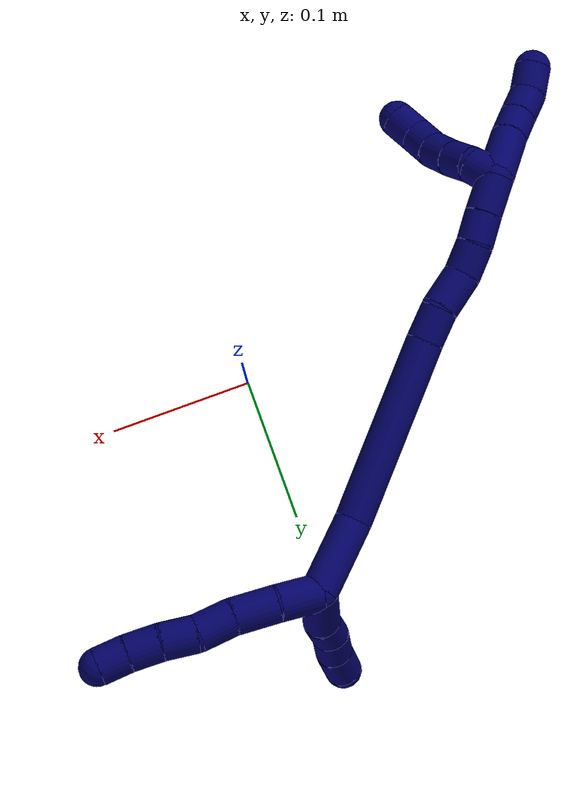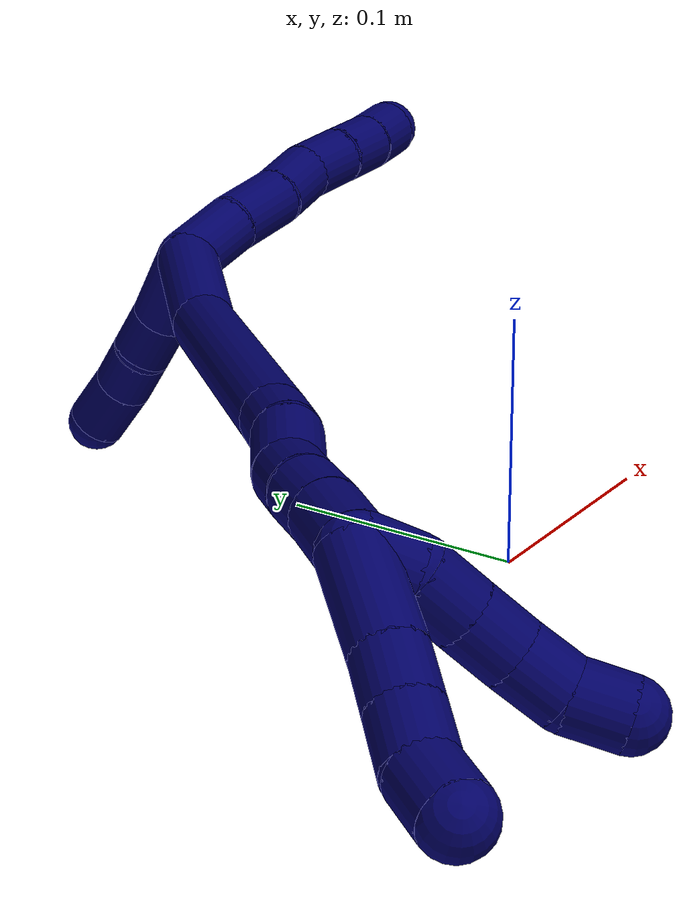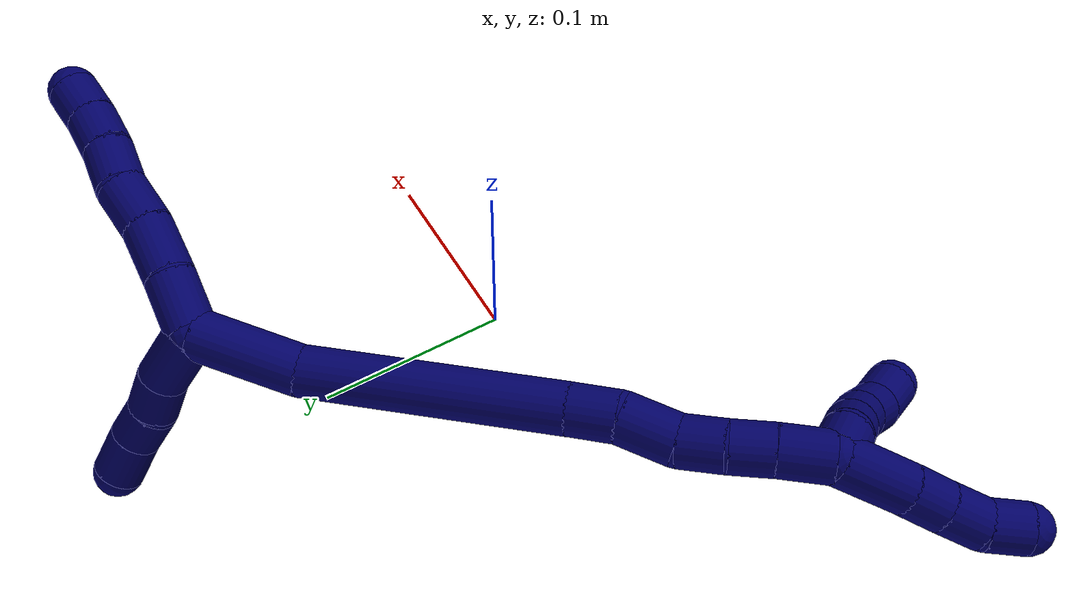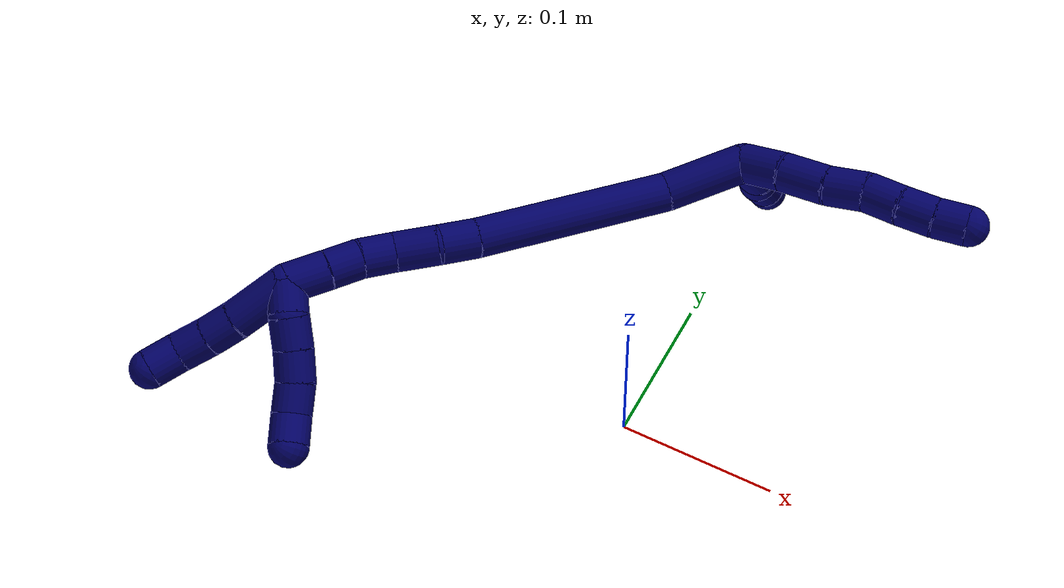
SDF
<sdf version="1.7">
 <world name="default">
  <model name="7">
   <static>0</static>
   <link name="7">
    <collision name="collision-cylinder-e_1_2_8">
     <pose>0.003051 0.013855 0.003677 -1.31138 0.209738 -0.161577</pose>
     <geometry><cylinder><radius>0.0125</radius><length>0.029311</length></cylinder></geometry>
     <surface>
      <friction><ode><mu>1.16</mu><mu2>1.16</mu2><slip1>0</slip1><slip2>0</slip2></ode></friction>
      <contact><ode><kp>1e+06</kp><kd>1</kd><max_vel>0</max_vel><min_depth>0.001</min_depth></ode></contact>
     </surface>
    </collision>
    <visual name="visual-cylinder-e_1_2_8">
     <pose>0.003051 0.013855 0.003677 -1.31138 0.209738 -0.161577</pose>
     <geometry><cylinder><radius>0.0125</radius><length>0.029311</length></cylinder></geometry>
     <material><ambient>0.003922 0 0.403922 1</ambient></material>
    </visual>
    <collision name="collision-cylinder-e_2_8_9">
     <pose>0.008467 0.041431 0.012848 -1.18992 0.158639 -0.107483</pose>
     <geometry><cylinder><radius>0.0125</radius><length>0.029936</length></cylinder></geometry>
     <surface>
      <friction><ode><mu>1.16</mu><mu2>1.16</mu2><slip1>0</slip1><slip2>0</slip2></ode></friction>
      <contact><ode><kp>1e+06</kp><kd>1</kd><max_vel>0</max_vel><min_depth>0.001</min_depth></ode></contact>
     </surface>
    </collision>
    <visual name="visual-cylinder-e_2_8_9">
     <pose>0.008467 0.041431 0.012848 -1.18992 0.158639 -0.107483</pose>
     <geometry><cylinder><radius>0.0125</radius><length>0.029936</length></cylinder></geometry>
     <material><ambient>0.003922 0 0.403922 1</ambient></material>
    </visual>
    <collision name="collision-cylinder-e_3_9_10">
     <pose>0.014578 0.066036 0.023548 -1.12468 0.301073 -0.190607</pose>
     <geometry><cylinder><radius>0.0125</radius><length>0.025266</length></cylinder></geometry>
     <surface>
      <friction><ode><mu>1.16</mu><mu2>1.16</mu2><slip1>0</slip1><slip2>0</slip2></ode></friction>
      <contact><ode><kp>1e+06</kp><kd>1</kd><max_vel>0</max_vel><min_depth>0.001</min_depth></ode></contact>
     </surface>
    </collision>
    <visual name="visual-cylinder-e_3_9_10">
     <pose>0.014578 0.066036 0.023548 -1.12468 0.301073 -0.190607</pose>
     <geometry><cylinder><radius>0.0125</radius><length>0.025266</length></cylinder></geometry>
     <material><ambient>0.003922 0 0.403922 1</ambient></material>
    </visual>
    <collision name="collision-cylinder-e_4_10_11">
     <pose>0.019268 0.087674 0.033043 -1.19129 0.081351 -0.055153</pose>
     <geometry><cylinder><radius>0.0125</radius><length>0.023233</length></cylinder></geometry>
     <surface>
      <friction><ode><mu>1.16</mu><mu2>1.16</mu2><slip1>0</slip1><slip2>0</slip2></ode></friction>
      <contact><ode><kp>1e+06</kp><kd>1</kd><max_vel>0</max_vel><min_depth>0.001</min_depth></ode></contact>
     </surface>
    </collision>
    <visual name="visual-cylinder-e_4_10_11">
     <pose>0.019268 0.087674 0.033043 -1.19129 0.081351 -0.055153</pose>
     <geometry><cylinder><radius>0.0125</radius><length>0.023233</length></cylinder></geometry>
     <material><ambient>0.003922 0 0.403922 1</ambient></material>
    </visual>
    <collision name="collision-cylinder-e_5_11_12">
     <pose>0.021622 0.108036 0.042448 -1.08151 0.128791 -0.077401</pose>
     <geometry><cylinder><radius>0.0125</radius><length>0.021951</length></cylinder></geometry>
     <surface>
      <friction><ode><mu>1.16</mu><mu2>1.16</mu2><slip1>0</slip1><slip2>0</slip2></ode></friction>
      <contact><ode><kp>1e+06</kp><kd>1</kd><max_vel>0</max_vel><min_depth>0.001</min_depth></ode></contact>
     </surface>
    </collision>
    <visual name="visual-cylinder-e_5_11_12">
     <pose>0.021622 0.108036 0.042448 -1.08151 0.128791 -0.077401</pose>
     <geometry><cylinder><radius>0.0125</radius><length>0.021951</length></cylinder></geometry>
     <material><ambient>0.003922 0 0.403922 1</ambient></material>
    </visual>
    <collision name="collision-cylinder-e_6_12_6">
     <pose>0.025313 0.126226 0.052482 -1.05046 0.226679 -0.131741</pose>
     <geometry><cylinder><radius>0.0125</radius><length>0.020302</length></cylinder></geometry>
     <surface>
      <friction><ode><mu>1.16</mu><mu2>1.16</mu2><slip1>0</slip1><slip2>0</slip2></ode></friction>
      <contact><ode><kp>1e+06</kp><kd>1</kd><max_vel>0</max_vel><min_depth>0.001</min_depth></ode></contact>
     </surface>
    </collision>
    <visual name="visual-cylinder-e_6_12_6">
     <pose>0.025313 0.126226 0.052482 -1.05046 0.226679 -0.131741</pose>
     <geometry><cylinder><radius>0.0125</radius><length>0.020302</length></cylinder></geometry>
     <material><ambient>0.003922 0 0.403922 1</ambient></material>
    </visual>
    <collision name="collision-cylinder-e_1_2_13">
     <pose>-0.001066 -0.006913 0.015988 0.408111 -0.061115 -0.012651</pose>
     <geometry><cylinder><radius>0.0125</radius><length>0.034903</length></cylinder></geometry>
     <surface>
      <friction><ode><mu>1.16</mu><mu2>1.16</mu2><slip1>0</slip1><slip2>0</slip2></ode></friction>
      <contact><ode><kp>1e+06</kp><kd>1</kd><max_vel>0</max_vel><min_depth>0.001</min_depth></ode></contact>
     </surface>
    </collision>
    <visual name="visual-cylinder-e_1_2_13">
     <pose>-0.001066 -0.006913 0.015988 0.408111 -0.061115 -0.012651</pose>
     <geometry><cylinder><radius>0.0125</radius><length>0.034903</length></cylinder></geometry>
     <material><ambient>0.003922 0 0.403922 1</ambient></material>
    </visual>
    <collision name="collision-cylinder-e_2_13_14">
     <pose>-0.003423 -0.019989 0.039927 0.659421 -0.1277 -0.043752</pose>
     <geometry><cylinder><radius>0.0125</radius><length>0.020284</length></cylinder></geometry>
     <surface>
      <friction><ode><mu>1.16</mu><mu2>1.16</mu2><slip1>0</slip1><slip2>0</slip2></ode></friction>
      <contact><ode><kp>1e+06</kp><kd>1</kd><max_vel>0</max_vel><min_depth>0.001</min_depth></ode></contact>
     </surface>
    </collision>
    <visual name="visual-cylinder-e_2_13_14">
     <pose>-0.003423 -0.019989 0.039927 0.659421 -0.1277 -0.043752</pose>
     <geometry><cylinder><radius>0.0125</radius><length>0.020284</length></cylinder></geometry>
     <material><ambient>0.003922 0 0.403922 1</ambient></material>
    </visual>
    <collision name="collision-cylinder-e_3_14_15">
     <pose>-0.004913 -0.030912 0.057074 0.477616 -0.019122 -0.004656</pose>
     <geometry><cylinder><radius>0.0125</radius><length>0.020715</length></cylinder></geometry>
     <surface>
      <friction><ode><mu>1.16</mu><mu2>1.16</mu2><slip1>0</slip1><slip2>0</slip2></ode></friction>
      <contact><ode><kp>1e+06</kp><kd>1</kd><max_vel>0</max_vel><min_depth>0.001</min_depth></ode></contact>
     </surface>
    </collision>
    <visual name="visual-cylinder-e_3_14_15">
     <pose>-0.004913 -0.030912 0.057074 0.477616 -0.019122 -0.004656</pose>
     <geometry><cylinder><radius>0.0125</radius><length>0.020715</length></cylinder></geometry>
     <material><ambient>0.003922 0 0.403922 1</ambient></material>
    </visual>
    <collision name="collision-cylinder-e_4_15_5">
     <pose>-0.005251 -0.042807 0.07598 0.633727 -0.01158 -0.003797</pose>
     <geometry><cylinder><radius>0.0125</radius><length>0.024098</length></cylinder></geometry>
     <surface>
      <friction><ode><mu>1.16</mu><mu2>1.16</mu2><slip1>0</slip1><slip2>0</slip2></ode></friction>
      <contact><ode><kp>1e+06</kp><kd>1</kd><max_vel>0</max_vel><min_depth>0.001</min_depth></ode></contact>
     </surface>
    </collision>
    <visual name="visual-cylinder-e_4_15_5">
     <pose>-0.005251 -0.042807 0.07598 0.633727 -0.01158 -0.003797</pose>
     <geometry><cylinder><radius>0.0125</radius><length>0.024098</length></cylinder></geometry>
     <material><ambient>0.003922 0 0.403922 1</ambient></material>
    </visual>
    <collision name="collision-cylinder-e_1_2_16">
     <pose>-0.019822 -0.010713 -0.01386 2.48355 -0.847047 -1.84517</pose>
     <geometry><cylinder><radius>0.0125</radius><length>0.052907</length></cylinder></geometry>
     <surface>
      <friction><ode><mu>1.16</mu><mu2>1.16</mu2><slip1>0</slip1><slip2>0</slip2></ode></friction>
      <contact><ode><kp>1e+06</kp><kd>1</kd><max_vel>0</max_vel><min_depth>0.001</min_depth></ode></contact>
     </surface>
    </collision>
    <visual name="visual-cylinder-e_1_2_16">
     <pose>-0.019822 -0.010713 -0.01386 2.48355 -0.847047 -1.84517</pose>
     <geometry><cylinder><radius>0.0125</radius><length>0.052907</length></cylinder></geometry>
     <material><ambient>0.003922 0 0.403922 1</ambient></material>
    </visual>
    <collision name="collision-cylinder-e_2_16_17">
     <pose>-0.079809 -0.037642 -0.074005 2.80461 -0.686191 -2.25276</pose>
     <geometry><cylinder><radius>0.0125</radius><length>0.126784</length></cylinder></geometry>
     <surface>
      <friction><ode><mu>1.16</mu><mu2>1.16</mu2><slip1>0</slip1><slip2>0</slip2></ode></friction>
      <contact><ode><kp>1e+06</kp><kd>1</kd><max_vel>0</max_vel><min_depth>0.001</min_depth></ode></contact>
     </surface>
    </collision>
    <visual name="visual-cylinder-e_2_16_17">
     <pose>-0.079809 -0.037642 -0.074005 2.80461 -0.686191 -2.25276</pose>
     <geometry><cylinder><radius>0.0125</radius><length>0.126784</length></cylinder></geometry>
     <material><ambient>0.003922 0 0.403922 1</ambient></material>
    </visual>
    <collision name="collision-cylinder-e_3_17_18">
     <pose>-0.126876 -0.057142 -0.129296 2.79191 -0.624078 -2.13959</pose>
     <geometry><cylinder><radius>0.0125</radius><length>0.023623</length></cylinder></geometry>
     <surface>
      <friction><ode><mu>1.16</mu><mu2>1.16</mu2><slip1>0</slip1><slip2>0</slip2></ode></friction>
      <contact><ode><kp>1e+06</kp><kd>1</kd><max_vel>0</max_vel><min_depth>0.001</min_depth></ode></contact>
     </surface>
    </collision>
    <visual name="visual-cylinder-e_3_17_18">
     <pose>-0.126876 -0.057142 -0.129296 2.79191 -0.624078 -2.13959</pose>
     <geometry><cylinder><radius>0.0125</radius><length>0.023623</length></cylinder></geometry>
     <material><ambient>0.003922 0 0.403922 1</ambient></material>
    </visual>
    <collision name="collision-cylinder-e_4_18_19">
     <pose>-0.142188 -0.067061 -0.147055 2.49307 -0.653407 -1.57886</pose>
     <geometry><cylinder><radius>0.0125</radius><length>0.027668</length></cylinder></geometry>
     <surface>
      <friction><ode><mu>1.16</mu><mu2>1.16</mu2><slip1>0</slip1><slip2>0</slip2></ode></friction>
      <contact><ode><kp>1e+06</kp><kd>1</kd><max_vel>0</max_vel><min_depth>0.001</min_depth></ode></contact>
     </surface>
    </collision>
    <visual name="visual-cylinder-e_4_18_19">
     <pose>-0.142188 -0.067061 -0.147055 2.49307 -0.653407 -1.57886</pose>
     <geometry><cylinder><radius>0.0125</radius><length>0.027668</length></cylinder></geometry>
     <material><ambient>0.003922 0 0.403922 1</ambient></material>
    </visual>
    <collision name="collision-cylinder-e_5_19_20">
     <pose>-0.157034 -0.076316 -0.164344 2.8437 -0.624592 -2.27145</pose>
     <geometry><cylinder><radius>0.0125</radius><length>0.022013</length></cylinder></geometry>
     <surface>
      <friction><ode><mu>1.16</mu><mu2>1.16</mu2><slip1>0</slip1><slip2>0</slip2></ode></friction>
      <contact><ode><kp>1e+06</kp><kd>1</kd><max_vel>0</max_vel><min_depth>0.001</min_depth></ode></contact>
     </surface>
    </collision>
    <visual name="visual-cylinder-e_5_19_20">
     <pose>-0.157034 -0.076316 -0.164344 2.8437 -0.624592 -2.27145</pose>
     <geometry><cylinder><radius>0.0125</radius><length>0.022013</length></cylinder></geometry>
     <material><ambient>0.003922 0 0.403922 1</ambient></material>
    </visual>
    <collision name="collision-cylinder-e_6_20_21">
     <pose>-0.170753 -0.080812 -0.180257 2.89264 -0.763378 -2.53721</pose>
     <geometry><cylinder><radius>0.0125</radius><length>0.02107</length></cylinder></geometry>
     <surface>
      <friction><ode><mu>1.16</mu><mu2>1.16</mu2><slip1>0</slip1><slip2>0</slip2></ode></friction>
      <contact><ode><kp>1e+06</kp><kd>1</kd><max_vel>0</max_vel><min_depth>0.001</min_depth></ode></contact>
     </surface>
    </collision>
    <visual name="visual-cylinder-e_6_20_21">
     <pose>-0.170753 -0.080812 -0.180257 2.89264 -0.763378 -2.53721</pose>
     <geometry><cylinder><radius>0.0125</radius><length>0.02107</length></cylinder></geometry>
     <material><ambient>0.003922 0 0.403922 1</ambient></material>
    </visual>
    <collision name="collision-cylinder-e_7_21_1">
     <pose>-0.187056 -0.085616 -0.196479 2.82181 -0.769149 -2.38325</pose>
     <geometry><cylinder><radius>0.0125</radius><length>0.025935</length></cylinder></geometry>
     <surface>
      <friction><ode><mu>1.16</mu><mu2>1.16</mu2><slip1>0</slip1><slip2>0</slip2></ode></friction>
      <contact><ode><kp>1e+06</kp><kd>1</kd><max_vel>0</max_vel><min_depth>0.001</min_depth></ode></contact>
     </surface>
    </collision>
    <visual name="visual-cylinder-e_7_21_1">
     <pose>-0.187056 -0.085616 -0.196479 2.82181 -0.769149 -2.38325</pose>
     <geometry><cylinder><radius>0.0125</radius><length>0.025935</length></cylinder></geometry>
     <material><ambient>0.003922 0 0.403922 1</ambient></material>
    </visual>
    <collision name="collision-cylinder-e_1_1_22">
     <pose>-0.20395 -0.082778 -0.203147 -1.20995 -0.906621 0.64981</pose>
     <geometry><cylinder><radius>0.0125</radius><length>0.02</length></cylinder></geometry>
     <surface>
      <friction><ode><mu>1.16</mu><mu2>1.16</mu2><slip1>0</slip1><slip2>0</slip2></ode></friction>
      <contact><ode><kp>1e+06</kp><kd>1</kd><max_vel>0</max_vel><min_depth>0.001</min_depth></ode></contact>
     </surface>
    </collision>
    <visual name="visual-cylinder-e_1_1_22">
     <pose>-0.20395 -0.082778 -0.203147 -1.20995 -0.906621 0.64981</pose>
     <geometry><cylinder><radius>0.0125</radius><length>0.02</length></cylinder></geometry>
     <material><ambient>0.003922 0 0.403922 1</ambient></material>
    </visual>
    <collision name="collision-cylinder-e_2_22_23">
     <pose>-0.219985 -0.073548 -0.196344 -0.64249 -0.954609 0.340873</pose>
     <geometry><cylinder><radius>0.0125</radius><length>0.02</length></cylinder></geometry>
     <surface>
      <friction><ode><mu>1.16</mu><mu2>1.16</mu2><slip1>0</slip1><slip2>0</slip2></ode></friction>
      <contact><ode><kp>1e+06</kp><kd>1</kd><max_vel>0</max_vel><min_depth>0.001</min_depth></ode></contact>
     </surface>
    </collision>
    <visual name="visual-cylinder-e_2_22_23">
     <pose>-0.219985 -0.073548 -0.196344 -0.64249 -0.954609 0.340873</pose>
     <geometry><cylinder><radius>0.0125</radius><length>0.02</length></cylinder></geometry>
     <material><ambient>0.003922 0 0.403922 1</ambient></material>
    </visual>
    <collision name="collision-cylinder-e_3_23_24">
     <pose>-0.236705 -0.066734 -0.187778 -0.704899 -1.02729 0.40919</pose>
     <geometry><cylinder><radius>0.0125</radius><length>0.02</length></cylinder></geometry>
     <surface>
      <friction><ode><mu>1.16</mu><mu2>1.16</mu2><slip1>0</slip1><slip2>0</slip2></ode></friction>
      <contact><ode><kp>1e+06</kp><kd>1</kd><max_vel>0</max_vel><min_depth>0.001</min_depth></ode></contact>
     </surface>
    </collision>
    <visual name="visual-cylinder-e_3_23_24">
     <pose>-0.236705 -0.066734 -0.187778 -0.704899 -1.02729 0.40919</pose>
     <geometry><cylinder><radius>0.0125</radius><length>0.02</length></cylinder></geometry>
     <material><ambient>0.003922 0 0.403922 1</ambient></material>
    </visual>
    <collision name="collision-cylinder-e_4_24_25">
     <pose>-0.25452 -0.060202 -0.18179 -0.998448 -1.18273 0.702041</pose>
     <geometry><cylinder><radius>0.0125</radius><length>0.02</length></cylinder></geometry>
     <surface>
      <friction><ode><mu>1.16</mu><mu2>1.16</mu2><slip1>0</slip1><slip2>0</slip2></ode></friction>
      <contact><ode><kp>1e+06</kp><kd>1</kd><max_vel>0</max_vel><min_depth>0.001</min_depth></ode></contact>
     </surface>
    </collision>
    <visual name="visual-cylinder-e_4_24_25">
     <pose>-0.25452 -0.060202 -0.18179 -0.998448 -1.18273 0.702041</pose>
     <geometry><cylinder><radius>0.0125</radius><length>0.02</length></cylinder></geometry>
     <material><ambient>0.003922 0 0.403922 1</ambient></material>
    </visual>
    <collision name="collision-cylinder-e_5_25_4">
     <pose>-0.271954 -0.051269 -0.17952 -1.53251 -0.957391 0.926421</pose>
     <geometry><cylinder><radius>0.0125</radius><length>0.02</length></cylinder></geometry>
     <surface>
      <friction><ode><mu>1.16</mu><mu2>1.16</mu2><slip1>0</slip1><slip2>0</slip2></ode></friction>
      <contact><ode><kp>1e+06</kp><kd>1</kd><max_vel>0</max_vel><min_depth>0.001</min_depth></ode></contact>
     </surface>
    </collision>
    <visual name="visual-cylinder-e_5_25_4">
     <pose>-0.271954 -0.051269 -0.17952 -1.53251 -0.957391 0.926421</pose>
     <geometry><cylinder><radius>0.0125</radius><length>0.02</length></cylinder></geometry>
     <material><ambient>0.003922 0 0.403922 1</ambient></material>
    </visual>
    <collision name="collision-cylinder-e_1_1_26">
     <pose>-0.213045 -0.095793 -0.210217 2.16469 -1.09495 -1.70772</pose>
     <geometry><cylinder><radius>0.0125</radius><length>0.03818</length></cylinder></geometry>
     <surface>
      <friction><ode><mu>1.16</mu><mu2>1.16</mu2><slip1>0</slip1><slip2>0</slip2></ode></friction>
      <contact><ode><kp>1e+06</kp><kd>1</kd><max_vel>0</max_vel><min_depth>0.001</min_depth></ode></contact>
     </surface>
    </collision>
    <visual name="visual-cylinder-e_1_1_26">
     <pose>-0.213045 -0.095793 -0.210217 2.16469 -1.09495 -1.70772</pose>
     <geometry><cylinder><radius>0.0125</radius><length>0.03818</length></cylinder></geometry>
     <material><ambient>0.003922 0 0.403922 1</ambient></material>
    </visual>
    <collision name="collision-cylinder-e_2_26_27">
     <pose>-0.238615 -0.10737 -0.218056 2.16808 -1.02385 -1.63064</pose>
     <geometry><cylinder><radius>0.0125</radius><length>0.020139</length></cylinder></geometry>
     <surface>
      <friction><ode><mu>1.16</mu><mu2>1.16</mu2><slip1>0</slip1><slip2>0</slip2></ode></friction>
      <contact><ode><kp>1e+06</kp><kd>1</kd><max_vel>0</max_vel><min_depth>0.001</min_depth></ode></contact>
     </surface>
    </collision>
    <visual name="visual-cylinder-e_2_26_27">
     <pose>-0.238615 -0.10737 -0.218056 2.16808 -1.02385 -1.63064</pose>
     <geometry><cylinder><radius>0.0125</radius><length>0.020139</length></cylinder></geometry>
     <material><ambient>0.003922 0 0.403922 1</ambient></material>
    </visual>
    <collision name="collision-cylinder-e_3_27_28">
     <pose>-0.255898 -0.11627 -0.224845 2.27018 -0.968353 -1.69245</pose>
     <geometry><cylinder><radius>0.0125</radius><length>0.021074</length></cylinder></geometry>
     <surface>
      <friction><ode><mu>1.16</mu><mu2>1.16</mu2><slip1>0</slip1><slip2>0</slip2></ode></friction>
      <contact><ode><kp>1e+06</kp><kd>1</kd><max_vel>0</max_vel><min_depth>0.001</min_depth></ode></contact>
     </surface>
    </collision>
    <visual name="visual-cylinder-e_3_27_28">
     <pose>-0.255898 -0.11627 -0.224845 2.27018 -0.968353 -1.69245</pose>
     <geometry><cylinder><radius>0.0125</radius><length>0.021074</length></cylinder></geometry>
     <material><ambient>0.003922 0 0.403922 1</ambient></material>
    </visual>
    <collision name="collision-cylinder-e_4_28_3">
     <pose>-0.273077 -0.122578 -0.23425 2.83865 -0.969714 -2.57753</pose>
     <geometry><cylinder><radius>0.0125</radius><length>0.020606</length></cylinder></geometry>
     <surface>
      <friction><ode><mu>1.16</mu><mu2>1.16</mu2><slip1>0</slip1><slip2>0</slip2></ode></friction>
      <contact><ode><kp>1e+06</kp><kd>1</kd><max_vel>0</max_vel><min_depth>0.001</min_depth></ode></contact>
     </surface>
    </collision>
    <visual name="visual-cylinder-e_4_28_3">
     <pose>-0.273077 -0.122578 -0.23425 2.83865 -0.969714 -2.57753</pose>
     <geometry><cylinder><radius>0.0125</radius><length>0.020606</length></cylinder></geometry>
     <material><ambient>0.003922 0 0.403922 1</ambient></material>
    </visual>
    <collision name="collision-sphere-3">
     <pose>-0.281574 -0.124316 -0.239812 0 -0 0</pose>
     <geometry><sphere><radius>0.0125</radius></sphere></geometry>
     <surface>
      <friction><ode><mu>1.16</mu><mu2>1.16</mu2><slip1>0</slip1><slip2>0</slip2></ode></friction>
      <contact><ode><kp>1e+06</kp><kd>1</kd><max_vel>0</max_vel><min_depth>0.001</min_depth></ode></contact>
     </surface>
    </collision>
    <visual name="visual-sphere-3">
     <pose>-0.281574 -0.124316 -0.239812 0 -0 0</pose>
     <geometry><sphere><radius>0.0125</radius></sphere></geometry>
     <material><ambient>0.003922 0 0.403922 1</ambient></material>
    </visual>
    <collision name="collision-sphere-28">
     <pose>-0.26458 -0.120839 -0.228689 0 -0 0</pose>
     <geometry><sphere><radius>0.0125</radius></sphere></geometry>
     <surface>
      <friction><ode><mu>1.16</mu><mu2>1.16</mu2><slip1>0</slip1><slip2>0</slip2></ode></friction>
      <contact><ode><kp>1e+06</kp><kd>1</kd><max_vel>0</max_vel><min_depth>0.001</min_depth></ode></contact>
     </surface>
    </collision>
    <visual name="visual-sphere-28">
     <pose>-0.26458 -0.120839 -0.228689 0 -0 0</pose>
     <geometry><sphere><radius>0.0125</radius></sphere></geometry>
     <material><ambient>0.003922 0 0.403922 1</ambient></material>
    </visual>
    <collision name="collision-sphere-27">
     <pose>-0.247216 -0.111701 -0.221002 0 -0 0</pose>
     <geometry><sphere><radius>0.0125</radius></sphere></geometry>
     <surface>
      <friction><ode><mu>1.16</mu><mu2>1.16</mu2><slip1>0</slip1><slip2>0</slip2></ode></friction>
      <contact><ode><kp>1e+06</kp><kd>1</kd><max_vel>0</max_vel><min_depth>0.001</min_depth></ode></contact>
     </surface>
    </collision>
    <visual name="visual-sphere-27">
     <pose>-0.247216 -0.111701 -0.221002 0 -0 0</pose>
     <geometry><sphere><radius>0.0125</radius></sphere></geometry>
     <material><ambient>0.003922 0 0.403922 1</ambient></material>
    </visual>
    <collision name="collision-sphere-26">
     <pose>-0.230014 -0.10304 -0.215111 0 -0 0</pose>
     <geometry><sphere><radius>0.0125</radius></sphere></geometry>
     <surface>
      <friction><ode><mu>1.16</mu><mu2>1.16</mu2><slip1>0</slip1><slip2>0</slip2></ode></friction>
      <contact><ode><kp>1e+06</kp><kd>1</kd><max_vel>0</max_vel><min_depth>0.001</min_depth></ode></contact>
     </surface>
    </collision>
    <visual name="visual-sphere-26">
     <pose>-0.230014 -0.10304 -0.215111 0 -0 0</pose>
     <geometry><sphere><radius>0.0125</radius></sphere></geometry>
     <material><ambient>0.003922 0 0.403922 1</ambient></material>
    </visual>
    <collision name="collision-sphere-4">
     <pose>-0.280131 -0.045517 -0.1793 0 -0 0</pose>
     <geometry><sphere><radius>0.0125</radius></sphere></geometry>
     <surface>
      <friction><ode><mu>1.16</mu><mu2>1.16</mu2><slip1>0</slip1><slip2>0</slip2></ode></friction>
      <contact><ode><kp>1e+06</kp><kd>1</kd><max_vel>0</max_vel><min_depth>0.001</min_depth></ode></contact>
     </surface>
    </collision>
    <visual name="visual-sphere-4">
     <pose>-0.280131 -0.045517 -0.1793 0 -0 0</pose>
     <geometry><sphere><radius>0.0125</radius></sphere></geometry>
     <material><ambient>0.003922 0 0.403922 1</ambient></material>
    </visual>
    <collision name="collision-sphere-25">
     <pose>-0.263777 -0.057022 -0.17974 0 -0 0</pose>
     <geometry><sphere><radius>0.0125</radius></sphere></geometry>
     <surface>
      <friction><ode><mu>1.16</mu><mu2>1.16</mu2><slip1>0</slip1><slip2>0</slip2></ode></friction>
      <contact><ode><kp>1e+06</kp><kd>1</kd><max_vel>0</max_vel><min_depth>0.001</min_depth></ode></contact>
     </surface>
    </collision>
    <visual name="visual-sphere-25">
     <pose>-0.263777 -0.057022 -0.17974 0 -0 0</pose>
     <geometry><sphere><radius>0.0125</radius></sphere></geometry>
     <material><ambient>0.003922 0 0.403922 1</ambient></material>
    </visual>
    <collision name="collision-sphere-24">
     <pose>-0.245264 -0.063383 -0.183839 0 -0 0</pose>
     <geometry><sphere><radius>0.0125</radius></sphere></geometry>
     <surface>
      <friction><ode><mu>1.16</mu><mu2>1.16</mu2><slip1>0</slip1><slip2>0</slip2></ode></friction>
      <contact><ode><kp>1e+06</kp><kd>1</kd><max_vel>0</max_vel><min_depth>0.001</min_depth></ode></contact>
     </surface>
    </collision>
    <visual name="visual-sphere-24">
     <pose>-0.245264 -0.063383 -0.183839 0 -0 0</pose>
     <geometry><sphere><radius>0.0125</radius></sphere></geometry>
     <material><ambient>0.003922 0 0.403922 1</ambient></material>
    </visual>
    <collision name="collision-sphere-23">
     <pose>-0.228146 -0.070085 -0.191717 0 -0 0</pose>
     <geometry><sphere><radius>0.0125</radius></sphere></geometry>
     <surface>
      <friction><ode><mu>1.16</mu><mu2>1.16</mu2><slip1>0</slip1><slip2>0</slip2></ode></friction>
      <contact><ode><kp>1e+06</kp><kd>1</kd><max_vel>0</max_vel><min_depth>0.001</min_depth></ode></contact>
     </surface>
    </collision>
    <visual name="visual-sphere-23">
     <pose>-0.228146 -0.070085 -0.191717 0 -0 0</pose>
     <geometry><sphere><radius>0.0125</radius></sphere></geometry>
     <material><ambient>0.003922 0 0.403922 1</ambient></material>
    </visual>
    <collision name="collision-sphere-22">
     <pose>-0.211824 -0.077011 -0.200971 0 -0 0</pose>
     <geometry><sphere><radius>0.0125</radius></sphere></geometry>
     <surface>
      <friction><ode><mu>1.16</mu><mu2>1.16</mu2><slip1>0</slip1><slip2>0</slip2></ode></friction>
      <contact><ode><kp>1e+06</kp><kd>1</kd><max_vel>0</max_vel><min_depth>0.001</min_depth></ode></contact>
     </surface>
    </collision>
    <visual name="visual-sphere-22">
     <pose>-0.211824 -0.077011 -0.200971 0 -0 0</pose>
     <geometry><sphere><radius>0.0125</radius></sphere></geometry>
     <material><ambient>0.003922 0 0.403922 1</ambient></material>
    </visual>
    <collision name="collision-sphere-1">
     <pose>-0.196076 -0.088545 -0.205324 0 -0 0</pose>
     <geometry><sphere><radius>0.0125</radius></sphere></geometry>
     <surface>
      <friction><ode><mu>1.16</mu><mu2>1.16</mu2><slip1>0</slip1><slip2>0</slip2></ode></friction>
      <contact><ode><kp>1e+06</kp><kd>1</kd><max_vel>0</max_vel><min_depth>0.001</min_depth></ode></contact>
     </surface>
    </collision>
    <visual name="visual-sphere-1">
     <pose>-0.196076 -0.088545 -0.205324 0 -0 0</pose>
     <geometry><sphere><radius>0.0125</radius></sphere></geometry>
     <material><ambient>0.003922 0 0.403922 1</ambient></material>
    </visual>
    <collision name="collision-sphere-21">
     <pose>-0.178037 -0.082687 -0.187634 0 -0 0</pose>
     <geometry><sphere><radius>0.0125</radius></sphere></geometry>
     <surface>
      <friction><ode><mu>1.16</mu><mu2>1.16</mu2><slip1>0</slip1><slip2>0</slip2></ode></friction>
      <contact><ode><kp>1e+06</kp><kd>1</kd><max_vel>0</max_vel><min_depth>0.001</min_depth></ode></contact>
     </surface>
    </collision>
    <visual name="visual-sphere-21">
     <pose>-0.178037 -0.082687 -0.187634 0 -0 0</pose>
     <geometry><sphere><radius>0.0125</radius></sphere></geometry>
     <material><ambient>0.003922 0 0.403922 1</ambient></material>
    </visual>
    <collision name="collision-sphere-12">
     <pose>0.023032 0.117644 0.047564 0 -0 0</pose>
     <geometry><sphere><radius>0.0125</radius></sphere></geometry>
     <surface>
      <friction><ode><mu>1.16</mu><mu2>1.16</mu2><slip1>0</slip1><slip2>0</slip2></ode></friction>
      <contact><ode><kp>1e+06</kp><kd>1</kd><max_vel>0</max_vel><min_depth>0.001</min_depth></ode></contact>
     </surface>
    </collision>
    <visual name="visual-sphere-12">
     <pose>0.023032 0.117644 0.047564 0 -0 0</pose>
     <geometry><sphere><radius>0.0125</radius></sphere></geometry>
     <material><ambient>0.003922 0 0.403922 1</ambient></material>
    </visual>
    <collision name="collision-sphere-11">
     <pose>0.020212 0.098429 0.037332 0 -0 0</pose>
     <geometry><sphere><radius>0.0125</radius></sphere></geometry>
     <surface>
      <friction><ode><mu>1.16</mu><mu2>1.16</mu2><slip1>0</slip1><slip2>0</slip2></ode></friction>
      <contact><ode><kp>1e+06</kp><kd>1</kd><max_vel>0</max_vel><min_depth>0.001</min_depth></ode></contact>
     </surface>
    </collision>
    <visual name="visual-sphere-11">
     <pose>0.020212 0.098429 0.037332 0 -0 0</pose>
     <geometry><sphere><radius>0.0125</radius></sphere></geometry>
     <material><ambient>0.003922 0 0.403922 1</ambient></material>
    </visual>
    <collision name="collision-sphere-10">
     <pose>0.018324 0.07692 0.028754 0 -0 0</pose>
     <geometry><sphere><radius>0.0125</radius></sphere></geometry>
     <surface>
      <friction><ode><mu>1.16</mu><mu2>1.16</mu2><slip1>0</slip1><slip2>0</slip2></ode></friction>
      <contact><ode><kp>1e+06</kp><kd>1</kd><max_vel>0</max_vel><min_depth>0.001</min_depth></ode></contact>
     </surface>
    </collision>
    <visual name="visual-sphere-10">
     <pose>0.018324 0.07692 0.028754 0 -0 0</pose>
     <geometry><sphere><radius>0.0125</radius></sphere></geometry>
     <material><ambient>0.003922 0 0.403922 1</ambient></material>
    </visual>
    <collision name="collision-sphere-9">
     <pose>0.010832 0.055152 0.018343 0 -0 0</pose>
     <geometry><sphere><radius>0.0125</radius></sphere></geometry>
     <surface>
      <friction><ode><mu>1.16</mu><mu2>1.16</mu2><slip1>0</slip1><slip2>0</slip2></ode></friction>
      <contact><ode><kp>1e+06</kp><kd>1</kd><max_vel>0</max_vel><min_depth>0.001</min_depth></ode></contact>
     </surface>
    </collision>
    <visual name="visual-sphere-9">
     <pose>0.010832 0.055152 0.018343 0 -0 0</pose>
     <geometry><sphere><radius>0.0125</radius></sphere></geometry>
     <material><ambient>0.003922 0 0.403922 1</ambient></material>
    </visual>
    <collision name="collision-sphere-2">
     <geometry><sphere><radius>0.0125</radius></sphere></geometry>
     <surface>
      <friction><ode><mu>1.16</mu><mu2>1.16</mu2><slip1>0</slip1><slip2>0</slip2></ode></friction>
      <contact><ode><kp>1e+06</kp><kd>1</kd><max_vel>0</max_vel><min_depth>0.001</min_depth></ode></contact>
     </surface>
    </collision>
    <visual name="visual-sphere-2">
     <geometry><sphere><radius>0.0125</radius></sphere></geometry>
     <material><ambient>0.003922 0 0.403922 1</ambient></material>
    </visual>
    <collision name="collision-sphere-19">
     <pose>-0.150597 -0.073695 -0.155809 0 -0 0</pose>
     <geometry><sphere><radius>0.0125</radius></sphere></geometry>
     <surface>
      <friction><ode><mu>1.16</mu><mu2>1.16</mu2><slip1>0</slip1><slip2>0</slip2></ode></friction>
      <contact><ode><kp>1e+06</kp><kd>1</kd><max_vel>0</max_vel><min_depth>0.001</min_depth></ode></contact>
     </surface>
    </collision>
    <visual name="visual-sphere-19">
     <pose>-0.150597 -0.073695 -0.155809 0 -0 0</pose>
     <geometry><sphere><radius>0.0125</radius></sphere></geometry>
     <material><ambient>0.003922 0 0.403922 1</ambient></material>
    </visual>
    <collision name="collision-sphere-8">
     <pose>0.006103 0.02771 0.007354 0 -0 0</pose>
     <geometry><sphere><radius>0.0125</radius></sphere></geometry>
     <surface>
      <friction><ode><mu>1.16</mu><mu2>1.16</mu2><slip1>0</slip1><slip2>0</slip2></ode></friction>
      <contact><ode><kp>1e+06</kp><kd>1</kd><max_vel>0</max_vel><min_depth>0.001</min_depth></ode></contact>
     </surface>
    </collision>
    <visual name="visual-sphere-8">
     <pose>0.006103 0.02771 0.007354 0 -0 0</pose>
     <geometry><sphere><radius>0.0125</radius></sphere></geometry>
     <material><ambient>0.003922 0 0.403922 1</ambient></material>
    </visual>
    <collision name="collision-sphere-6">
     <pose>0.027594 0.134808 0.057399 0 -0 0</pose>
     <geometry><sphere><radius>0.0125</radius></sphere></geometry>
     <surface>
      <friction><ode><mu>1.16</mu><mu2>1.16</mu2><slip1>0</slip1><slip2>0</slip2></ode></friction>
      <contact><ode><kp>1e+06</kp><kd>1</kd><max_vel>0</max_vel><min_depth>0.001</min_depth></ode></contact>
     </surface>
    </collision>
    <visual name="visual-sphere-6">
     <pose>0.027594 0.134808 0.057399 0 -0 0</pose>
     <geometry><sphere><radius>0.0125</radius></sphere></geometry>
     <material><ambient>0.003922 0 0.403922 1</ambient></material>
    </visual>
    <collision name="collision-sphere-13">
     <pose>-0.002132 -0.013826 0.031977 0 -0 0</pose>
     <geometry><sphere><radius>0.0125</radius></sphere></geometry>
     <surface>
      <friction><ode><mu>1.16</mu><mu2>1.16</mu2><slip1>0</slip1><slip2>0</slip2></ode></friction>
      <contact><ode><kp>1e+06</kp><kd>1</kd><max_vel>0</max_vel><min_depth>0.001</min_depth></ode></contact>
     </surface>
    </collision>
    <visual name="visual-sphere-13">
     <pose>-0.002132 -0.013826 0.031977 0 -0 0</pose>
     <geometry><sphere><radius>0.0125</radius></sphere></geometry>
     <material><ambient>0.003922 0 0.403922 1</ambient></material>
    </visual>
    <collision name="collision-sphere-14">
     <pose>-0.004715 -0.026152 0.047877 0 -0 0</pose>
     <geometry><sphere><radius>0.0125</radius></sphere></geometry>
     <surface>
      <friction><ode><mu>1.16</mu><mu2>1.16</mu2><slip1>0</slip1><slip2>0</slip2></ode></friction>
      <contact><ode><kp>1e+06</kp><kd>1</kd><max_vel>0</max_vel><min_depth>0.001</min_depth></ode></contact>
     </surface>
    </collision>
    <visual name="visual-sphere-14">
     <pose>-0.004715 -0.026152 0.047877 0 -0 0</pose>
     <geometry><sphere><radius>0.0125</radius></sphere></geometry>
     <material><ambient>0.003922 0 0.403922 1</ambient></material>
    </visual>
    <collision name="collision-sphere-15">
     <pose>-0.005111 -0.035672 0.066271 0 -0 0</pose>
     <geometry><sphere><radius>0.0125</radius></sphere></geometry>
     <surface>
      <friction><ode><mu>1.16</mu><mu2>1.16</mu2><slip1>0</slip1><slip2>0</slip2></ode></friction>
      <contact><ode><kp>1e+06</kp><kd>1</kd><max_vel>0</max_vel><min_depth>0.001</min_depth></ode></contact>
     </surface>
    </collision>
    <visual name="visual-sphere-15">
     <pose>-0.005111 -0.035672 0.066271 0 -0 0</pose>
     <geometry><sphere><radius>0.0125</radius></sphere></geometry>
     <material><ambient>0.003922 0 0.403922 1</ambient></material>
    </visual>
    <collision name="collision-sphere-5">
     <pose>-0.00539 -0.049941 0.085689 0 -0 0</pose>
     <geometry><sphere><radius>0.0125</radius></sphere></geometry>
     <surface>
      <friction><ode><mu>1.16</mu><mu2>1.16</mu2><slip1>0</slip1><slip2>0</slip2></ode></friction>
      <contact><ode><kp>1e+06</kp><kd>1</kd><max_vel>0</max_vel><min_depth>0.001</min_depth></ode></contact>
     </surface>
    </collision>
    <visual name="visual-sphere-5">
     <pose>-0.00539 -0.049941 0.085689 0 -0 0</pose>
     <geometry><sphere><radius>0.0125</radius></sphere></geometry>
     <material><ambient>0.003922 0 0.403922 1</ambient></material>
    </visual>
    <collision name="collision-sphere-16">
     <pose>-0.039645 -0.021426 -0.027719 0 -0 0</pose>
     <geometry><sphere><radius>0.0125</radius></sphere></geometry>
     <surface>
      <friction><ode><mu>1.16</mu><mu2>1.16</mu2><slip1>0</slip1><slip2>0</slip2></ode></friction>
      <contact><ode><kp>1e+06</kp><kd>1</kd><max_vel>0</max_vel><min_depth>0.001</min_depth></ode></contact>
     </surface>
    </collision>
    <visual name="visual-sphere-16">
     <pose>-0.039645 -0.021426 -0.027719 0 -0 0</pose>
     <geometry><sphere><radius>0.0125</radius></sphere></geometry>
     <material><ambient>0.003922 0 0.403922 1</ambient></material>
    </visual>
    <collision name="collision-sphere-17">
     <pose>-0.119974 -0.053858 -0.120291 0 -0 0</pose>
     <geometry><sphere><radius>0.0125</radius></sphere></geometry>
     <surface>
      <friction><ode><mu>1.16</mu><mu2>1.16</mu2><slip1>0</slip1><slip2>0</slip2></ode></friction>
      <contact><ode><kp>1e+06</kp><kd>1</kd><max_vel>0</max_vel><min_depth>0.001</min_depth></ode></contact>
     </surface>
    </collision>
    <visual name="visual-sphere-17">
     <pose>-0.119974 -0.053858 -0.120291 0 -0 0</pose>
     <geometry><sphere><radius>0.0125</radius></sphere></geometry>
     <material><ambient>0.003922 0 0.403922 1</ambient></material>
    </visual>
    <collision name="collision-sphere-18">
     <pose>-0.133778 -0.060426 -0.138301 0 -0 0</pose>
     <geometry><sphere><radius>0.0125</radius></sphere></geometry>
     <surface>
      <friction><ode><mu>1.16</mu><mu2>1.16</mu2><slip1>0</slip1><slip2>0</slip2></ode></friction>
      <contact><ode><kp>1e+06</kp><kd>1</kd><max_vel>0</max_vel><min_depth>0.001</min_depth></ode></contact>
     </surface>
    </collision>
    <visual name="visual-sphere-18">
     <pose>-0.133778 -0.060426 -0.138301 0 -0 0</pose>
     <geometry><sphere><radius>0.0125</radius></sphere></geometry>
     <material><ambient>0.003922 0 0.403922 1</ambient></material>
    </visual>
    <collision name="collision-sphere-20">
     <pose>-0.16347 -0.078936 -0.17288 0 -0 0</pose>
     <geometry><sphere><radius>0.0125</radius></sphere></geometry>
     <surface>
      <friction><ode><mu>1.16</mu><mu2>1.16</mu2><slip1>0</slip1><slip2>0</slip2></ode></friction>
      <contact><ode><kp>1e+06</kp><kd>1</kd><max_vel>0</max_vel><min_depth>0.001</min_depth></ode></contact>
     </surface>
    </collision>
    <visual name="visual-sphere-20">
     <pose>-0.16347 -0.078936 -0.17288 0 -0 0</pose>
     <geometry><sphere><radius>0.0125</radius></sphere></geometry>
     <material><ambient>0.003922 0 0.403922 1</ambient></material>
    </visual>
    <inertial>
     <pose>-0.101192 -0.031556 -0.083295 0 -0 0</pose>
     <mass>0.75</mass>
     <inertia>
      <ixx>-0.000218</ixx>
      <ixy>0</ixy>
      <ixz>0</ixz>
      <iyy>5.3e-05</iyy>
      <iyz>0</iyz>
      <izz>0.000183</izz>
     </inertia>
    </inertial>
   </link>
   <pose>0.003784 0.156968 0.095298 2.67103 -0.618507 1.43352</pose>
  </model>
 </world>
</sdf>
